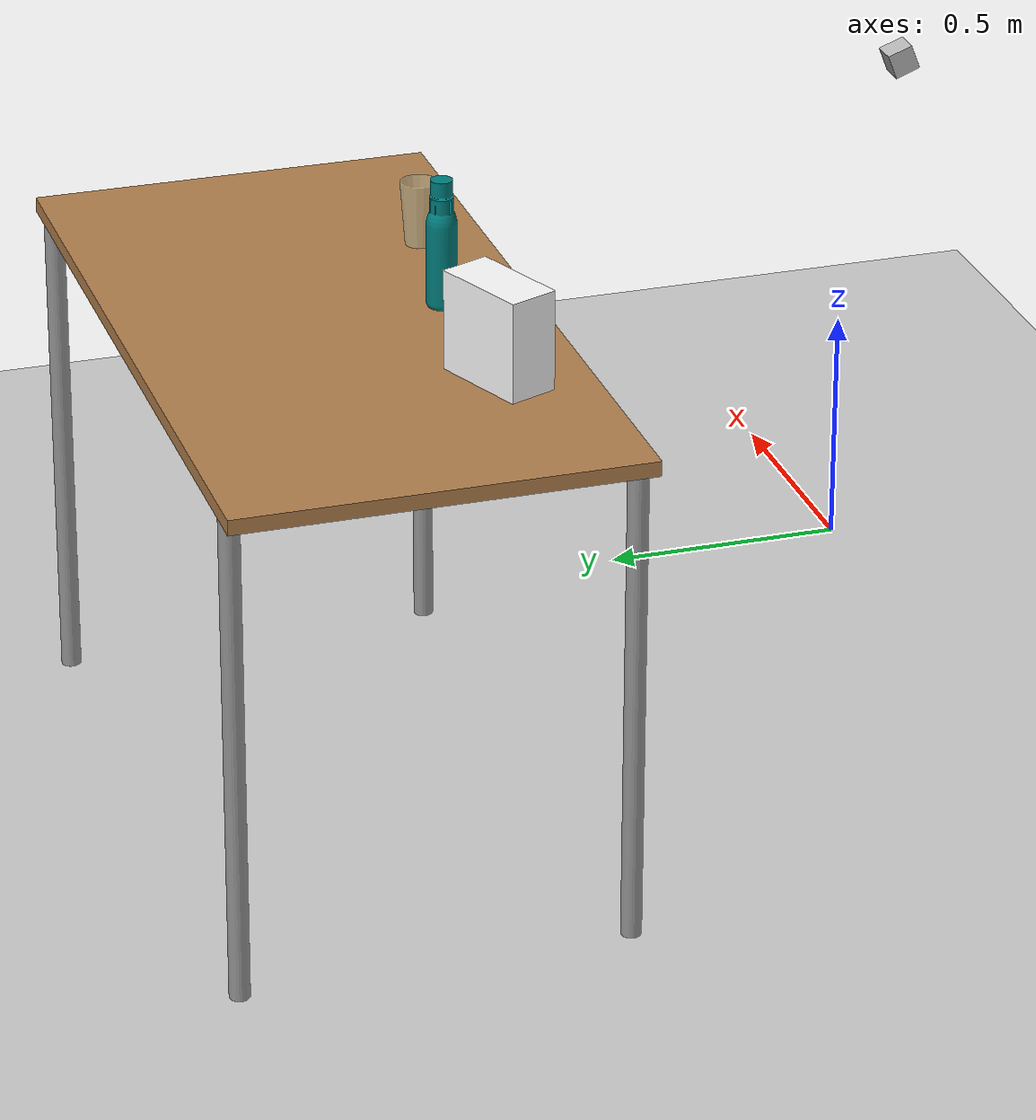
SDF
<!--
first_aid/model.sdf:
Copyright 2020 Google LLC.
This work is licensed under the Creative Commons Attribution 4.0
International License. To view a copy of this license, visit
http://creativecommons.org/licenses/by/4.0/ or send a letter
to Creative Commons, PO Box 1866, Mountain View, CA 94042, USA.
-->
<?xml version="1.0" ?>
<sdf version='1.9'>
  <world name='empty'>
  <gui fullscreen="0">
      <plugin filename="MinimalScene" name="3D View">
        <ignition-gui>
            <title>3D View</title>
            <property type="bool" key="showTitleBar">false</property>
            <property type="string" key="state">docked</property>
        </ignition-gui>
        <engine>ogre2</engine>
        <scene>scene</scene>
        <ambient_light>0.4 0.4 0.4</ambient_light>
        <background_color>0.8 0.8 0.8</background_color>
        <camera_pose>-6 0 6 0 0.5 0</camera_pose>
      </plugin>

      <!-- Plugins that add functionality to the scene -->
      <plugin filename="EntityContextMenuPlugin" name="Entity context menu">
          <ignition-gui>
              <property key="state" type="string">floating</property>
              <property key="width" type="double">5</property>
              <property key="height" type="double">5</property>
              <property key="showTitleBar" type="bool">false</property>
          </ignition-gui>
      </plugin>

      <plugin filename="GzSceneManager" name="Scene Manager">
          <ignition-gui>
              <property key="resizable" type="bool">false</property>
              <property key="width" type="double">5</property>
              <property key="height" type="double">5</property>
              <property key="state" type="string">floating</property>
              <property key="showTitleBar" type="bool">false</property>
          </ignition-gui>
      </plugin>

      <plugin filename="InteractiveViewControl" name="Interactive view control">
          <ignition-gui>
              <property key="resizable" type="bool">false</property>
              <property key="width" type="double">5</property>
              <property key="height" type="double">5</property>
              <property key="state" type="string">floating</property>
              <property key="showTitleBar" type="bool">false</property>
          </ignition-gui>
      </plugin>

      <plugin filename="CameraTracking" name="Camera Tracking">
          <ignition-gui>
              <property key="resizable" type="bool">false</property>
              <property key="width" type="double">5</property>
              <property key="height" type="double">5</property>
              <property key="state" type="string">floating</property>
              <property key="showTitleBar" type="bool">false</property>
          </ignition-gui>
      </plugin>

      <plugin filename="MarkerManager" name="Marker manager">
          <ignition-gui>
              <property key="resizable" type="bool">false</property>
              <property key="width" type="double">5</property>
              <property key="height" type="double">5</property>
              <property key="state" type="string">floating</property>
              <property key="showTitleBar" type="bool">false</property>
          </ignition-gui>
      </plugin>

      <plugin filename="SelectEntities" name="Select Entities">
          <ignition-gui>
              <property key="resizable" type="bool">false</property>
              <property key="width" type="double">5</property>
              <property key="height" type="double">5</property>
              <property key="state" type="string">floating</property>
              <property key="showTitleBar" type="bool">false</property>
          </ignition-gui>
      </plugin>

      <plugin filename="Spawn" name="Spawn Entities">
          <ignition-gui>
              <property key="resizable" type="bool">false</property>
              <property key="width" type="double">5</property>
              <property key="height" type="double">5</property>
              <property key="state" type="string">floating</property>
              <property key="showTitleBar" type="bool">false</property>
          </ignition-gui>
      </plugin>

      <plugin filename="VisualizationCapabilities" name="Visualization Capabilities">
          <ignition-gui>
              <property key="resizable" type="bool">false</property>
              <property key="width" type="double">5</property>
              <property key="height" type="double">5</property>
              <property key="state" type="string">floating</property>
              <property key="showTitleBar" type="bool">false</property>
          </ignition-gui>
      </plugin>

    <!-- World control -->
    <plugin filename="WorldControl" name="World control">
        <ignition-gui>
            <title>World control</title>
            <property type="bool" key="showTitleBar">false</property>
            <property type="bool" key="resizable">false</property>
            <property type="double" key="height">72</property>
            <property type="double" key="z">1</property>
            <property type="string" key="state">floating</property>
            <anchors target="3D View">
                <line own="left" target="left"/>
                <line own="bottom" target="bottom"/>
            </anchors>
        </ignition-gui>
        <play_pause>true</play_pause>
        <step>true</step>
        <start_paused>true</start_paused>
        <use_event>true</use_event>
    </plugin>

    <!-- World statistics -->
    <plugin filename="WorldStats" name="World stats">
        <ignition-gui>
            <title>World stats</title>
            <property type="bool" key="showTitleBar">false</property>
            <property type="bool" key="resizable">false</property>
            <property type="double" key="height">110</property>
            <property type="double" key="width">290</property>
            <property type="double" key="z">1</property>
            <property type="string" key="state">floating</property>
            <anchors target="3D View">
                <line own="right" target="right"/>
                <line own="bottom" target="bottom"/>
            </anchors>
        </ignition-gui>
        <sim_time>true</sim_time>
        <real_time>true</real_time>
        <real_time_factor>true</real_time_factor>
        <iterations>true</iterations>
    </plugin>

    <!-- Insert simple shapes -->
    <plugin filename="Shapes" name="Shapes">
        <ignition-gui>
            <property key="resizable" type="bool">false</property>
            <property key="x" type="double">0</property>
            <property key="y" type="double">0</property>
            <property key="width" type="double">250</property>
            <property key="height" type="double">50</property>
            <property key="state" type="string">floating</property>
            <property key="showTitleBar" type="bool">false</property>
            <property key="cardBackground" type="string">#666666</property>
        </ignition-gui>
    </plugin>

    <!-- Insert lights -->
    <plugin filename="Lights" name="Lights">
        <ignition-gui>
            <property key="resizable" type="bool">false</property>
            <property key="x" type="double">250</property>
            <property key="y" type="double">0</property>
            <property key="width" type="double">150</property>
            <property key="height" type="double">50</property>
            <property key="state" type="string">floating</property>
            <property key="showTitleBar" type="bool">false</property>
            <property key="cardBackground" type="string">#666666</property>
        </ignition-gui>
    </plugin>

    <!-- Translate / rotate -->
    <plugin filename="TransformControl" name="Transform control">
        <ignition-gui>
            <property key="resizable" type="bool">false</property>
            <property key="x" type="double">0</property>
            <property key="y" type="double">50</property>
            <property key="width" type="double">250</property>
            <property key="height" type="double">50</property>
            <property key="state" type="string">floating</property>
            <property key="showTitleBar" type="bool">false</property>
            <property key="cardBackground" type="string">#777777</property>
        </ignition-gui>
    </plugin>

    <!-- Inspector -->
    <plugin filename="ComponentInspector" name="Component inspector">
        <ignition-gui>
            <property type="bool" key="showTitleBar">false</property>
            <property type="string" key="state">docked</property>
        </ignition-gui>
    </plugin>

    <!-- Entity tree -->
    <plugin filename="EntityTree" name="Entity tree">
        <ignition-gui>
            <property type="bool" key="showTitleBar">false</property>
            <property type="string" key="state">docked</property>
        </ignition-gui>
    </plugin>

        <!-- Image Display -->
    <plugin filename="ImageDisplay" name="Image Display">
        <ignition-gui>
            <property type="bool" key="showTitleBar">false</property>
            <property type="string" key="state">docked</property>
        </ignition-gui>
        <topic>color_camera/image_raw</topic>
    </plugin>
  </gui>
    <physics name='1ms' type='ignored'>
      <max_step_size>0.001</max_step_size>
      <real_time_factor>1</real_time_factor>
      <real_time_update_rate>1000</real_time_update_rate>
    </physics>
    <plugin name='ignition::gazebo::systems::Physics' filename='libignition-gazebo-physics-system.so'/>
    <plugin name='ignition::gazebo::systems::UserCommands' filename='libignition-gazebo-user-commands-system.so'/>
    <plugin name='ignition::gazebo::systems::SceneBroadcaster' filename='libignition-gazebo-scene-broadcaster-system.so'/>
    <plugin name='ignition::gazebo::systems::Contact' filename='libignition-gazebo-contact-system.so'/>
    <plugin name="ignition::gazebo::systems::Sensors" filename="libignition-gazebo-sensors-system.so">
      <render_engine>ogre2</render_engine>
    </plugin>
    <gravity>0 0 -9.8000000000000007</gravity>
    <magnetic_field>5.5644999999999998e-06 2.2875799999999999e-05 -4.2388400000000002e-05</magnetic_field>
    <atmosphere type='adiabatic'/>
    <scene>
      <ambient>0.400000006 0.400000006 0.400000006 1</ambient>
      <background>0.699999988 0.699999988 0.699999988 1</background>
      <shadows>true</shadows>
    </scene>
    <model name='ground_plane'>
      <static>true</static>
      <link name='link'>
        <collision name='collision'>
          <geometry>
            <plane>
              <normal>0 0 1</normal>
              <size>100 100</size>
            </plane>
          </geometry>
          <surface>
            <friction>
              <ode/>
            </friction>
            <bounce/>
            <contact/>
          </surface>
        </collision>
        <visual name='visual'>
          <geometry>
            <plane>
              <normal>0 0 1</normal>
              <size>100 100</size>
            </plane>
          </geometry>
          <material>
            <ambient>0.800000012 0.800000012 0.800000012 1</ambient>
            <diffuse>0.800000012 0.800000012 0.800000012 1</diffuse>
            <specular>0.800000012 0.800000012 0.800000012 1</specular>
          </material>
        </visual>
        <pose>0 0 0 0 0 0</pose>
        <inertial>
          <pose>0 0 0 0 0 0</pose>
          <mass>1</mass>
          <inertia>
            <ixx>1</ixx>
            <ixy>0</ixy>
            <ixz>0</ixz>
            <iyy>1</iyy>
            <iyz>0</iyz>
            <izz>1</izz>
          </inertia>
        </inertial>
        <enable_wind>false</enable_wind>
      </link>
      <pose>0 0 0 0 0 0</pose>
      <self_collide>false</self_collide>
    </model>

    <model name="camera">
      <static>true</static>
      <pose>-0.77 0.20 1.41 0 0.37 1.57</pose>
      <link name="link">
        <static>true</static>
        <pose>0 0 0 0 0 0</pose>
        <inertial>
          <mass>0.1</mass>
          <inertia>
            <ixx>0.000166667</ixx>
            <iyy>0.000166667</iyy>
            <izz>0.000166667</izz>
          </inertia>
        </inertial>
        <collision name="collision">
          <geometry>
            <box>
              <size>0.1 0.1 0.1</size>
            </box>
          </geometry>
        </collision>
        <visual name="visual">
          <geometry>
            <box>
              <size>0.05 0.05 0.05</size>
            </box>
          </geometry>
        </visual>
        <sensor name="camera" type="camera">
          <camera>
            <horizontal_fov>1.047</horizontal_fov>
            <image>
              <width>320</width>
              <height>240</height>
            </image>
            <clip>
              <near>0.1</near>
              <far>100</far>
            </clip>
          </camera>
          <always_on>1</always_on>
          <update_rate>30</update_rate>
          <visualize>true</visualize>
          <topic>color_camera/image_raw</topic>
        </sensor>
      </link>
    </model>

    <include>
      <uri>model://table</uri>
      <name>Table</name>
      <pose>-0.78708818628089183 1.3378657486190808 0 0 0 0</pose>
    </include>
    <include>
      <uri>model://first_aid</uri>
      <name>first_aid</name>
      <pose>-1.1212886571884155 1.1123484373092651 1.1133700370788574 0 0 0.3856180019829511</pose>
    </include>
    <include>
      <uri>model://adhesive</uri>
      <name>adhesive</name>
      <pose>-0.77862358093261719 1.1180200576782227 1.1701400279998779 0 0 0</pose>
    </include>
    <include>
      <uri>model://plastic_cup</uri>
      <name>plastic_cup</name>
      <pose>-0.47838106751441956 1.0659799575805664 1.0227999687194824 0 0 0</pose>
    </include>
    <light name='sun' type='directional'>
      <pose>0 0 10 0 0 0</pose>
      <cast_shadows>true</cast_shadows>
      <intensity>1</intensity>
      <direction>-0.5 0.10000000000000001 -0.90000000000000002</direction>
      <diffuse>0.800000012 0.800000012 0.800000012 1</diffuse>
      <specular>0.200000003 0.200000003 0.200000003 1</specular>
      <attenuation>
        <range>1000</range>
        <linear>0.01</linear>
        <constant>0.90000000000000002</constant>
        <quadratic>0.001</quadratic>
      </attenuation>
      <spot>
        <inner_angle>0</inner_angle>
        <outer_angle>0</outer_angle>
        <falloff>0</falloff>
      </spot>
    </light>
  </world>
</sdf>

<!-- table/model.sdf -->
<sdf version="1.5">
  <model name="table">
    <static>true</static>
    <link name="link">
      <collision name="surface">
        <pose>0 0 1.0 0 0 0</pose>
        <geometry>
          <box>
            <size>1.5 0.8 0.03</size>
          </box>
        </geometry>
        <surface>
          <friction>
            <ode>
              <mu>0.6</mu>
              <mu2>0.6</mu2>
            </ode>
          </friction>
        </surface>
      </collision>
      <visual name="visual1">
        <pose>0 0 1.0 0 0 0</pose>
        <geometry>
          <box>
            <size>1.5 0.8 0.03</size>
          </box>
        </geometry>
        <material>
          <script>
            <uri>model://media/materials/scripts/gazebo.material</uri>
            <name>Gazebo/Wood</name>
          </script>
        </material>
      </visual>
      <collision name="front_left_leg">
        <pose>0.68 0.38 0.5 0 0 0</pose>
        <geometry>
          <cylinder>
            <radius>0.02</radius>
            <length>1.0</length>
          </cylinder>
        </geometry>
      </collision>
      <visual name="front_left_leg">
        <pose>0.68 0.38 0.5 0 0 0</pose>
        <geometry>
          <cylinder>
            <radius>0.02</radius>
            <length>1.0</length>
          </cylinder>
        </geometry>
        <material>
          <script>
            <uri>model://media/materials/scripts/gazebo.material</uri>
            <name>Gazebo/Grey</name>
          </script>
        </material>
      </visual>
      <collision name="front_right_leg">
        <pose>0.68 -0.38 0.5 0 0 0</pose>
        <geometry>
          <cylinder>
            <radius>0.02</radius>
            <length>1.0</length>
          </cylinder>
        </geometry>
      </collision>
      <visual name="front_right_leg">
        <pose>0.68 -0.38 0.5 0 0 0</pose>
        <geometry>
          <cylinder>
            <radius>0.02</radius>
            <length>1.0</length>
          </cylinder>
        </geometry>
        <material>
          <script>
            <uri>model://media/materials/scripts/gazebo.material</uri>
            <name>Gazebo/Grey</name>
          </script>
        </material>
      </visual>
      <collision name="back_right_leg">
        <pose>-0.68 -0.38 0.5 0 0 0</pose>
        <geometry>
          <cylinder>
            <radius>0.02</radius>
            <length>1.0</length>
          </cylinder>
        </geometry>
      </collision>
      <visual name="back_right_leg">
        <pose>-0.68 -0.38 0.5 0 0 0</pose>
        <geometry>
          <cylinder>
            <radius>0.02</radius>
            <length>1.0</length>
          </cylinder>
        </geometry>
        <material>
          <script>
            <uri>model://media/materials/scripts/gazebo.material</uri>
            <name>Gazebo/Grey</name>
          </script>
        </material>
      </visual>
      <collision name="back_left_leg">
        <pose>-0.68 0.38 0.5 0 0 0</pose>
        <geometry>
          <cylinder>
            <radius>0.02</radius>
            <length>1.0</length>
          </cylinder>
        </geometry>
      </collision>
      <visual name="back_left_leg">
        <pose>-0.68 0.38 0.5 0 0 0</pose>
        <geometry>
          <cylinder>
            <radius>0.02</radius>
            <length>1.0</length>
          </cylinder>
        </geometry>
        <material>
          <script>
            <uri>model://media/materials/scripts/gazebo.material</uri>
            <name>Gazebo/Grey</name>
          </script>
        </material>
      </visual>
    </link>
  </model>
</sdf>

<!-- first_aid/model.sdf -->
<sdf version="1.6">
  <model name="first_aid">
    <link name="link_0">
      <visual name="visual">
        <geometry>
          <box>
            <size>0.2 0.1 0.20</size>
          </box>
        </geometry>
        <material>
          <ambient>1 1 1 1</ambient>
          <diffuse>1 1 1 1</diffuse>
          <specular>0 0 0 1</specular>
          <emissive>0 0 0 1</emissive>
        </material>
      </visual>
      <collision name="collision">
        <geometry>
          <box>
            <size>0.2 0.1 0.20</size>
          </box>
        </geometry>
      </collision>
    </link>
  </model>
</sdf>

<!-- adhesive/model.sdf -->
<sdf version="1.6">
  <model name="adhesive">

    <link name="link">

      <inertial>
        <pose>0 0 0 0 0 0</pose>
        <mass>0.08</mass>
      </inertial>

      <collision name="colision1">
        <pose>0 0 0 0 0 0 </pose>
        <geometry>
          <mesh>
            <uri>model://adhesive/meshes/adhesive.dae</uri>
          </mesh>
        </geometry>
      </collision>

      <visual name="visual1">
        <cast_shadows>true</cast_shadows>
	      <pose> 0 0 0 0 0 0</pose>
        <geometry>
          <mesh>
            <uri>model://adhesive/meshes/adhesive.dae</uri>
          </mesh>
        </geometry>
	      <material>
          <ambient>0 0.5 0.5 1</ambient>
          <diffuse>0 0.5 0.5 1</diffuse>
          <specular>0 0.5 0.5 1</specular>
	      </material>
      </visual>

    </link>
  </model>
</sdf>

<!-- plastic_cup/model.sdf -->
<sdf version="1.5">
  <model name="plastic_cup">
    <static>1</static>
    <link name="link">
      <pose>0 0 0.065 0 0 0</pose>
      <collision name="collision">
        <geometry>
          <mesh>
            <uri>model://plastic_cup/meshes/plastic_cup.dae</uri>
          </mesh>
        </geometry>
      </collision>
      <visual name="visual">
        <geometry>
          <mesh>
            <uri>model://plastic_cup/meshes/plastic_cup.dae</uri>
          </mesh>
        </geometry>
        <transparency>0.5</transparency>
      </visual>
    </link>
  </model>
</sdf>
